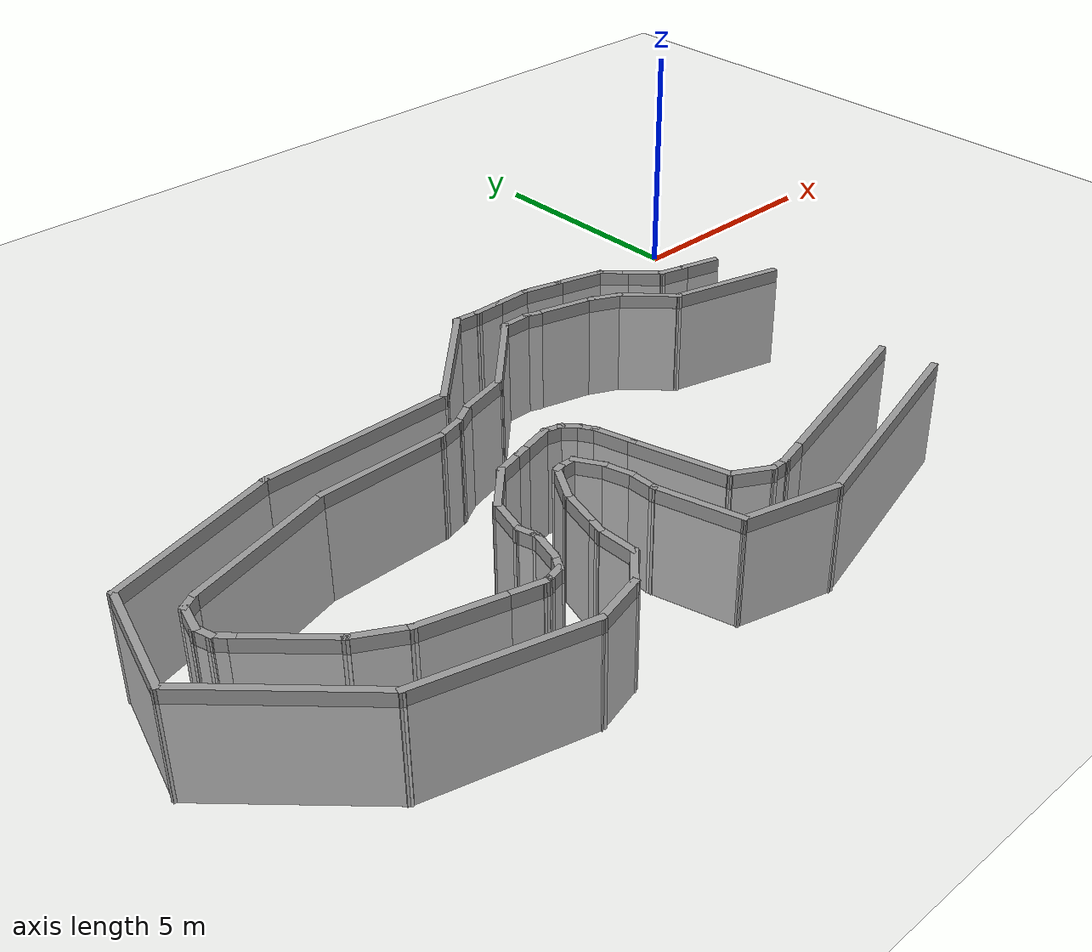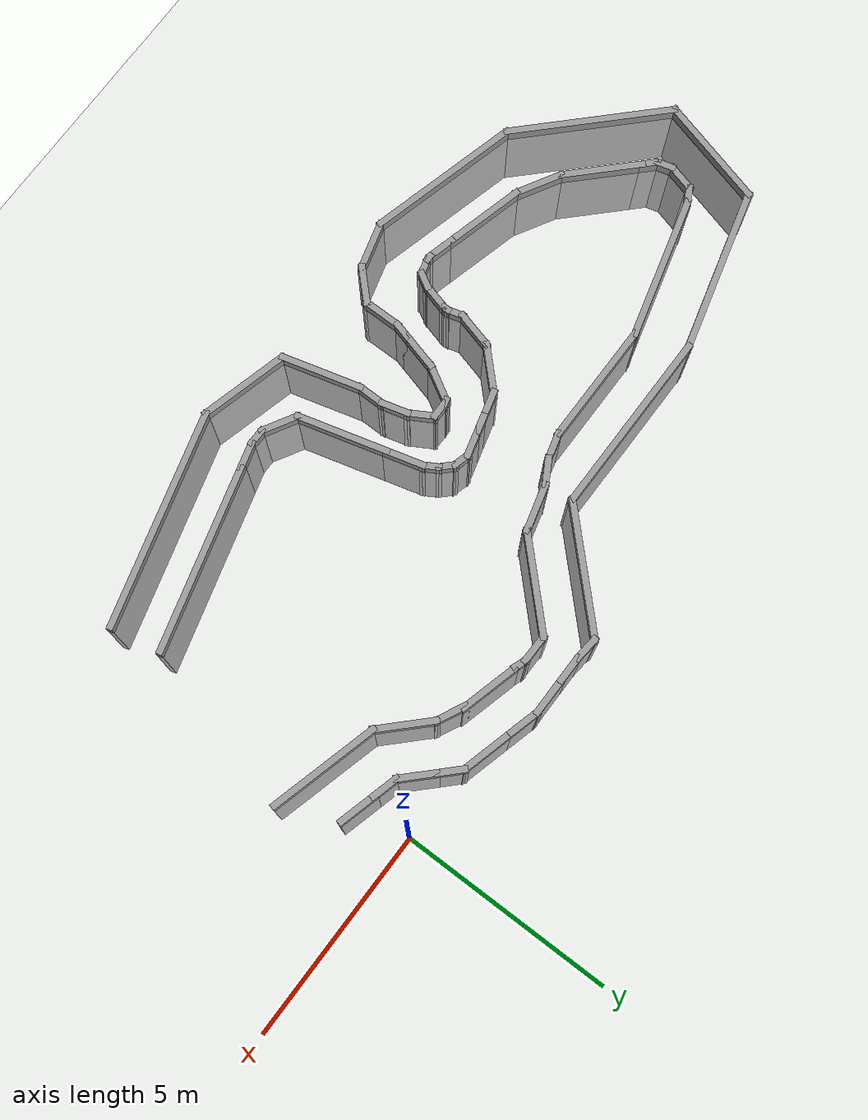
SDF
<sdf version="1.7">
 <world name="default">
  <model name="ground_plane">
   <static>1</static>
   <link name="link">
    <collision name="collision">
     <geometry><plane><normal>0 0 1</normal><size>100 100</size></plane></geometry>
     <surface>
      <contact><collide_bitmask>65535</collide_bitmask></contact>
      <friction><ode><mu>100</mu><mu2>50</mu2></ode></friction>
     </surface>
    </collision>
    <visual name="visual">
     <cast_shadows>0</cast_shadows>
     <geometry><plane><normal>0 0 1</normal><size>100 100</size></plane></geometry>
     <material>
      <script><uri>file://media/materials/scripts/gazebo.material</uri><name>Gazebo/Grey</name></script>
     </material>
    </visual>
   </link>
  </model>
  <model name="race_track">
   <pose>-1.60501 -2.80737 -2.21385 0 -0 0</pose>
   <link name="Wall_0">
    <collision name="Wall_0_Collision">
     <geometry><box><size>3.25 0.15 2.5</size></box></geometry>
     <pose>0 0 1.25 0 -0 0</pose>
    </collision>
    <visual name="Wall_0_Visual">
     <pose>0 0 1.25 0 -0 0</pose>
     <geometry><box><size>3.25 0.15 2.5</size></box></geometry>
     <material>
      <script><uri>file://media/materials/scripts/gazebo.material</uri><name>Gazebo/Grey</name></script>
      <ambient>1 1 1 1</ambient>
     </material>
     <meta><layer>0</layer></meta>
    </visual>
    <pose>-5.20016 2.3234 0 0 -0 -2.35619</pose>
   </link>
   <link name="Wall_1">
    <collision name="Wall_1_Collision">
     <geometry><box><size>4.5 0.15 2.5</size></box></geometry>
     <pose>0 0 1.25 0 -0 0</pose>
    </collision>
    <visual name="Wall_1_Visual">
     <pose>0 0 1.25 0 -0 0</pose>
     <geometry><box><size>4.5 0.15 2.5</size></box></geometry>
     <material>
      <script><uri>file://media/materials/scripts/gazebo.material</uri><name>Gazebo/Grey</name></script>
      <ambient>1 1 1 1</ambient>
     </material>
     <meta><layer>0</layer></meta>
    </visual>
    <pose>-8.47118 1.22738 0 0 -0 3.14159</pose>
   </link>
   <link name="Wall_10">
    <collision name="Wall_10_Collision">
     <geometry><box><size>1 0.15 2.5</size></box></geometry>
     <pose>0 0 1.25 0 -0 0</pose>
    </collision>
    <visual name="Wall_10_Visual">
     <pose>0 0 1.25 0 -0 0</pose>
     <geometry><box><size>1 0.15 2.5</size></box></geometry>
     <material>
      <script><uri>file://media/materials/scripts/gazebo.material</uri><name>Gazebo/Grey</name></script>
      <ambient>1 1 1 1</ambient>
     </material>
     <meta><layer>0</layer></meta>
    </visual>
    <pose>-6.97408 -3.45025 0 0 -0 1.309</pose>
   </link>
   <link name="Wall_100">
    <collision name="Wall_100_Collision">
     <geometry><box><size>0.75 0.15 2.5</size></box></geometry>
     <pose>0 0 1.25 0 -0 0</pose>
    </collision>
    <visual name="Wall_100_Visual">
     <pose>0 0 1.25 0 -0 0</pose>
     <geometry><box><size>0.75 0.15 2.5</size></box></geometry>
     <material>
      <script><uri>file://media/materials/scripts/gazebo.material</uri><name>Gazebo/Grey</name></script>
      <ambient>1 1 1 1</ambient>
     </material>
     <meta><layer>0</layer></meta>
    </visual>
    <pose>-2.81623 -5.01276 0 0 -0 0.261799</pose>
   </link>
   <link name="Wall_101">
    <collision name="Wall_101_Collision">
     <geometry><box><size>4.5 0.15 2.5</size></box></geometry>
     <pose>0 0 1.25 0 -0 0</pose>
    </collision>
    <visual name="Wall_101_Visual">
     <pose>0 0 1.25 0 -0 0</pose>
     <geometry><box><size>4.5 0.15 2.5</size></box></geometry>
     <material>
      <script><uri>file://media/materials/scripts/gazebo.material</uri><name>Gazebo/Grey</name></script>
      <ambient>1 1 1 1</ambient>
     </material>
     <meta><layer>0</layer></meta>
    </visual>
    <pose>-0.425561 -4.37218 0 0 -0 0.261799</pose>
   </link>
   <link name="Wall_11">
    <collision name="Wall_11_Collision">
     <geometry><box><size>1 0.15 2.5</size></box></geometry>
     <pose>0 0 1.25 0 -0 0</pose>
    </collision>
    <visual name="Wall_11_Visual">
     <pose>0 0 1.25 0 -0 0</pose>
     <geometry><box><size>1 0.15 2.5</size></box></geometry>
     <material>
      <script><uri>file://media/materials/scripts/gazebo.material</uri><name>Gazebo/Grey</name></script>
      <ambient>1 1 1 1</ambient>
     </material>
     <meta><layer>0</layer></meta>
    </visual>
    <pose>-6.65158 -2.67167 0 0 -0 1.0472</pose>
   </link>
   <link name="Wall_12">
    <collision name="Wall_12_Collision">
     <geometry><box><size>0.25 0.15 2.5</size></box></geometry>
     <pose>0 0 1.25 0 -0 0</pose>
    </collision>
    <visual name="Wall_12_Visual">
     <pose>0 0 1.25 0 -0 0</pose>
     <geometry><box><size>0.25 0.15 2.5</size></box></geometry>
     <material>
      <script><uri>file://media/materials/scripts/gazebo.material</uri><name>Gazebo/Grey</name></script>
      <ambient>1 1 1 1</ambient>
     </material>
     <meta><layer>0</layer></meta>
    </visual>
    <pose>-6.39079 -2.29067 0 0 -0 0.261799</pose>
   </link>
   <link name="Wall_13">
    <collision name="Wall_13_Collision">
     <geometry><box><size>0.5 0.15 2.5</size></box></geometry>
     <pose>0 0 1.25 0 -0 0</pose>
    </collision>
    <visual name="Wall_13_Visual">
     <pose>0 0 1.25 0 -0 0</pose>
     <geometry><box><size>0.5 0.15 2.5</size></box></geometry>
     <material>
      <script><uri>file://media/materials/scripts/gazebo.material</uri><name>Gazebo/Grey</name></script>
      <ambient>1 1 1 1</ambient>
     </material>
     <meta><layer>0</layer></meta>
    </visual>
    <pose>-6.16749 -2.27773 0 0 -0 0</pose>
   </link>
   <link name="Wall_136">
    <collision name="Wall_136_Collision">
     <geometry><box><size>2.75 0.15 2.5</size></box></geometry>
     <pose>0 0 1.25 0 -0 0</pose>
    </collision>
    <visual name="Wall_136_Visual">
     <pose>0 0 1.25 0 -0 0</pose>
     <geometry><box><size>2.75 0.15 2.5</size></box></geometry>
     <material>
      <script><uri>file://media/materials/scripts/gazebo.material</uri><name>Gazebo/Grey</name></script>
      <ambient>1 1 1 1</ambient>
     </material>
     <meta><layer>0</layer></meta>
    </visual>
    <pose>1.52414 0.478699 0 0 -0 2.87979</pose>
   </link>
   <link name="Wall_137">
    <collision name="Wall_137_Collision">
     <geometry><box><size>1.5 0.15 2.5</size></box></geometry>
     <pose>0 0 1.25 0 -0 0</pose>
    </collision>
    <visual name="Wall_137_Visual">
     <pose>0 0 1.25 0 -0 0</pose>
     <geometry><box><size>1.5 0.15 2.5</size></box></geometry>
     <material>
      <script><uri>file://media/materials/scripts/gazebo.material</uri><name>Gazebo/Grey</name></script>
      <ambient>1 1 1 1</ambient>
     </material>
     <meta><layer>0</layer></meta>
    </visual>
    <pose>-0.208862 1.29246 0 0 -0 2.35619</pose>
   </link>
   <link name="Wall_138">
    <collision name="Wall_138_Collision">
     <geometry><box><size>0.83217 0.15 2.5</size></box></geometry>
     <pose>0 0 1.25 0 -0 0</pose>
    </collision>
    <visual name="Wall_138_Visual">
     <pose>0 0 1.25 0 -0 0</pose>
     <geometry><box><size>0.83217 0.15 2.5</size></box></geometry>
     <material>
      <script><uri>file://media/materials/scripts/gazebo.material</uri><name>Gazebo/Grey</name></script>
      <ambient>1 1 1 1</ambient>
     </material>
     <meta><layer>0</layer></meta>
    </visual>
    <pose>-0.992491 1.91976 0 0 -0 2.68625</pose>
   </link>
   <link name="Wall_139">
    <collision name="Wall_139_Collision">
     <geometry><box><size>1.5 0.15 2.5</size></box></geometry>
     <pose>0 0 1.25 0 -0 0</pose>
    </collision>
    <visual name="Wall_139_Visual">
     <pose>0 0 1.25 0 -0 0</pose>
     <geometry><box><size>1.5 0.15 2.5</size></box></geometry>
     <material>
      <script><uri>file://media/materials/scripts/gazebo.material</uri><name>Gazebo/Grey</name></script>
      <ambient>1 1 1 1</ambient>
     </material>
     <meta><layer>0</layer></meta>
    </visual>
    <pose>-1.9043 2.24446 0 0 -0 2.87979</pose>
   </link>
   <link name="Wall_14">
    <collision name="Wall_14_Collision">
     <geometry><box><size>0.75 0.15 2.5</size></box></geometry>
     <pose>0 0 1.25 0 -0 0</pose>
    </collision>
    <visual name="Wall_14_Visual">
     <pose>0 0 1.25 0 -0 0</pose>
     <geometry><box><size>0.75 0.15 2.5</size></box></geometry>
     <material>
      <script><uri>file://media/materials/scripts/gazebo.material</uri><name>Gazebo/Grey</name></script>
      <ambient>1 1 1 1</ambient>
     </material>
     <meta><layer>0</layer></meta>
    </visual>
    <pose>-5.84249 -2.53754 0 0 -0 -1.0472</pose>
   </link>
   <link name="Wall_140">
    <collision name="Wall_140_Collision">
     <geometry><box><size>0.411235 0.15 2.5</size></box></geometry>
     <pose>0 0 1.25 0 -0 0</pose>
    </collision>
    <visual name="Wall_140_Visual">
     <pose>0 0 1.25 0 -0 0</pose>
     <geometry><box><size>0.411235 0.15 2.5</size></box></geometry>
     <material>
      <script><uri>file://media/materials/scripts/gazebo.material</uri><name>Gazebo/Grey</name></script>
      <ambient>1 1 1 1</ambient>
     </material>
     <meta><layer>0</layer></meta>
    </visual>
    <pose>-2.72533 2.46446 0 0 -0 2.78748</pose>
   </link>
   <link name="Wall_141">
    <collision name="Wall_141_Collision">
     <geometry><box><size>0.788881 0.15 2.5</size></box></geometry>
     <pose>0 0 1.25 0 -0 0</pose>
    </collision>
    <visual name="Wall_141_Visual">
     <pose>0 0 1.25 0 -0 0</pose>
     <geometry><box><size>0.788881 0.15 2.5</size></box></geometry>
     <material>
      <script><uri>file://media/materials/scripts/gazebo.material</uri><name>Gazebo/Grey</name></script>
      <ambient>1 1 1 1</ambient>
     </material>
     <meta><layer>0</layer></meta>
    </visual>
    <pose>-3.16728 2.51238 0 0 -0 3.13335</pose>
   </link>
   <link name="Wall_15">
    <collision name="Wall_15_Collision">
     <geometry><box><size>0.75 0.15 2.5</size></box></geometry>
     <pose>0 0 1.25 0 -0 0</pose>
    </collision>
    <visual name="Wall_15_Visual">
     <pose>0 0 1.25 0 -0 0</pose>
     <geometry><box><size>0.75 0.15 2.5</size></box></geometry>
     <material>
      <script><uri>file://media/materials/scripts/gazebo.material</uri><name>Gazebo/Grey</name></script>
      <ambient>1 1 1 1</ambient>
     </material>
     <meta><layer>0</layer></meta>
    </visual>
    <pose>-5.61484 -3.08712 0 0 -0 -1.309</pose>
   </link>
   <link name="Wall_16">
    <collision name="Wall_16_Collision">
     <geometry><box><size>0.75 0.15 2.5</size></box></geometry>
     <pose>0 0 1.25 0 -0 0</pose>
    </collision>
    <visual name="Wall_16_Visual">
     <pose>0 0 1.25 0 -0 0</pose>
     <geometry><box><size>0.75 0.15 2.5</size></box></geometry>
     <material>
      <script><uri>file://media/materials/scripts/gazebo.material</uri><name>Gazebo/Grey</name></script>
      <ambient>1 1 1 1</ambient>
     </material>
     <meta><layer>0</layer></meta>
    </visual>
    <pose>-5.5372 -3.6769 0 0 -0 -1.5708</pose>
   </link>
   <link name="Wall_17">
    <collision name="Wall_17_Collision">
     <geometry><box><size>2 0.15 2.5</size></box></geometry>
     <pose>0 0 1.25 0 -0 0</pose>
    </collision>
    <visual name="Wall_17_Visual">
     <pose>0 0 1.25 0 -0 0</pose>
     <geometry><box><size>2 0.15 2.5</size></box></geometry>
     <material>
      <script><uri>file://media/materials/scripts/gazebo.material</uri><name>Gazebo/Grey</name></script>
      <ambient>1 1 1 1</ambient>
     </material>
     <meta><layer>0</layer></meta>
    </visual>
    <pose>-5.29779 -4.87038 0 0 -0 -1.309</pose>
   </link>
   <link name="Wall_18">
    <collision name="Wall_18_Collision">
     <geometry><box><size>2.25 0.15 2.5</size></box></geometry>
     <pose>0 0 1.25 0 -0 0</pose>
    </collision>
    <visual name="Wall_18_Visual">
     <pose>0 0 1.25 0 -0 0</pose>
     <geometry><box><size>2.25 0.15 2.5</size></box></geometry>
     <material>
      <script><uri>file://media/materials/scripts/gazebo.material</uri><name>Gazebo/Grey</name></script>
      <ambient>1 1 1 1</ambient>
     </material>
     <meta><layer>0</layer></meta>
    </visual>
    <pose>-4.04416 -6.03562 0 0 -0 -0.261799</pose>
   </link>
   <link name="Wall_19">
    <collision name="Wall_19_Collision">
     <geometry><box><size>5.25 0.15 2.5</size></box></geometry>
     <pose>0 0 1.25 0 -0 0</pose>
    </collision>
    <visual name="Wall_19_Visual">
     <pose>0 0 1.25 0 -0 0</pose>
     <geometry><box><size>5.25 0.15 2.5</size></box></geometry>
     <material>
      <script><uri>file://media/materials/scripts/gazebo.material</uri><name>Gazebo/Grey</name></script>
      <ambient>1 1 1 1</ambient>
     </material>
     <meta><layer>0</layer></meta>
    </visual>
    <pose>-0.566829 -5.64739 0 0 -0 0.261799</pose>
   </link>
   <link name="Wall_2">
    <collision name="Wall_2_Collision">
     <geometry><box><size>4 0.15 2.5</size></box></geometry>
     <pose>0 0 1.25 0 -0 0</pose>
    </collision>
    <visual name="Wall_2_Visual">
     <pose>0 0 1.25 0 -0 0</pose>
     <geometry><box><size>4 0.15 2.5</size></box></geometry>
     <material>
      <script><uri>file://media/materials/scripts/gazebo.material</uri><name>Gazebo/Grey</name></script>
      <ambient>1 1 1 1</ambient>
     </material>
     <meta><layer>0</layer></meta>
    </visual>
    <pose>-12.5056 0.729158 0 0 -0 -2.87979</pose>
   </link>
   <link name="Wall_3">
    <collision name="Wall_3_Collision">
     <geometry><box><size>2.75 0.15 2.5</size></box></geometry>
     <pose>0 0 1.25 0 -0 0</pose>
    </collision>
    <visual name="Wall_3_Visual">
     <pose>0 0 1.25 0 -0 0</pose>
     <geometry><box><size>2.75 0.15 2.5</size></box></geometry>
     <material>
      <script><uri>file://media/materials/scripts/gazebo.material</uri><name>Gazebo/Grey</name></script>
      <ambient>1 1 1 1</ambient>
     </material>
     <meta><layer>0</layer></meta>
    </visual>
    <pose>-14.7015 -1.02477 0 0 -0 -1.8326</pose>
   </link>
   <link name="Wall_4">
    <collision name="Wall_4_Collision">
     <geometry><box><size>4 0.15 2.5</size></box></geometry>
     <pose>0 0 1.25 0 -0 0</pose>
    </collision>
    <visual name="Wall_4_Visual">
     <pose>0 0 1.25 0 -0 0</pose>
     <geometry><box><size>4 0.15 2.5</size></box></geometry>
     <material>
      <script><uri>file://media/materials/scripts/gazebo.material</uri><name>Gazebo/Grey</name></script>
      <ambient>1 1 1 1</ambient>
     </material>
     <meta><layer>0</layer></meta>
    </visual>
    <pose>-13.6767 -3.64166 0 0 -0 -0.785398</pose>
   </link>
   <link name="Wall_5">
    <collision name="Wall_5_Collision">
     <geometry><box><size>3.75 0.15 2.5</size></box></geometry>
     <pose>0 0 1.25 0 -0 0</pose>
    </collision>
    <visual name="Wall_5_Visual">
     <pose>0 0 1.25 0 -0 0</pose>
     <geometry><box><size>3.75 0.15 2.5</size></box></geometry>
     <material>
      <script><uri>file://media/materials/scripts/gazebo.material</uri><name>Gazebo/Grey</name></script>
      <ambient>1 1 1 1</ambient>
     </material>
     <meta><layer>0</layer></meta>
    </visual>
    <pose>-10.5769 -5.46871 0 0 -0 -0.261799</pose>
   </link>
   <link name="Wall_57">
    <collision name="Wall_57_Collision">
     <geometry><box><size>1 0.15 2.5</size></box></geometry>
     <pose>0 0 1.25 0 -0 0</pose>
    </collision>
    <visual name="Wall_57_Visual">
     <pose>0 0 1.25 0 -0 0</pose>
     <geometry><box><size>1 0.15 2.5</size></box></geometry>
     <material>
      <script><uri>file://media/materials/scripts/gazebo.material</uri><name>Gazebo/Grey</name></script>
      <ambient>1 1 1 1</ambient>
     </material>
     <meta><layer>0</layer></meta>
    </visual>
    <pose>1.78695 1.57051 0 0 -0 2.87979</pose>
   </link>
   <link name="Wall_58">
    <collision name="Wall_58_Collision">
     <geometry><box><size>0.75 0.15 2.5</size></box></geometry>
     <pose>0 0 1.25 0 -0 0</pose>
    </collision>
    <visual name="Wall_58_Visual">
     <pose>0 0 1.25 0 -0 0</pose>
     <geometry><box><size>0.75 0.15 2.5</size></box></geometry>
     <material>
      <script><uri>file://media/materials/scripts/gazebo.material</uri><name>Gazebo/Grey</name></script>
      <ambient>1 1 1 1</ambient>
     </material>
     <meta><layer>0</layer></meta>
    </visual>
    <pose>1.08665 1.75815 0 0 -0 2.87979</pose>
   </link>
   <link name="Wall_59">
    <collision name="Wall_59_Collision">
     <geometry><box><size>1 0.15 2.5</size></box></geometry>
     <pose>0 0 1.25 0 -0 0</pose>
    </collision>
    <visual name="Wall_59_Visual">
     <pose>0 0 1.25 0 -0 0</pose>
     <geometry><box><size>1 0.15 2.5</size></box></geometry>
     <material>
      <script><uri>file://media/materials/scripts/gazebo.material</uri><name>Gazebo/Grey</name></script>
      <ambient>1 1 1 1</ambient>
     </material>
     <meta><layer>0</layer></meta>
    </visual>
    <pose>0.496356 2.13632 0 0 -0 2.35619</pose>
   </link>
   <link name="Wall_6">
    <collision name="Wall_6_Collision">
     <geometry><box><size>1.25 0.15 2.5</size></box></geometry>
     <pose>0 0 1.25 0 -0 0</pose>
    </collision>
    <visual name="Wall_6_Visual">
     <pose>0 0 1.25 0 -0 0</pose>
     <geometry><box><size>1.25 0.15 2.5</size></box></geometry>
     <material>
      <script><uri>file://media/materials/scripts/gazebo.material</uri><name>Gazebo/Grey</name></script>
      <ambient>1 1 1 1</ambient>
     </material>
     <meta><layer>0</layer></meta>
    </visual>
    <pose>-8.30697 -5.79223 0 0 -0 0.261799</pose>
   </link>
   <link name="Wall_60">
    <collision name="Wall_60_Collision">
     <geometry><box><size>0.75 0.15 2.5</size></box></geometry>
     <pose>0 0 1.25 0 -0 0</pose>
    </collision>
    <visual name="Wall_60_Visual">
     <pose>0 0 1.25 0 -0 0</pose>
     <geometry><box><size>0.75 0.15 2.5</size></box></geometry>
     <material>
      <script><uri>file://media/materials/scripts/gazebo.material</uri><name>Gazebo/Grey</name></script>
      <ambient>1 1 1 1</ambient>
     </material>
     <meta><layer>0</layer></meta>
    </visual>
    <pose>-0.016296 2.64897 0 0 -0 2.35619</pose>
   </link>
   <link name="Wall_61">
    <collision name="Wall_61_Collision">
     <geometry><box><size>1.25 0.15 2.5</size></box></geometry>
     <pose>0 0 1.25 0 -0 0</pose>
    </collision>
    <visual name="Wall_61_Visual">
     <pose>0 0 1.25 0 -0 0</pose>
     <geometry><box><size>1.25 0.15 2.5</size></box></geometry>
     <material>
      <script><uri>file://media/materials/scripts/gazebo.material</uri><name>Gazebo/Grey</name></script>
      <ambient>1 1 1 1</ambient>
     </material>
     <meta><layer>0</layer></meta>
    </visual>
    <pose>-0.759687 3.00346 0 0 -0 2.87979</pose>
   </link>
   <link name="Wall_62">
    <collision name="Wall_62_Collision">
     <geometry><box><size>1 0.15 2.5</size></box></geometry>
     <pose>0 0 1.25 0 -0 0</pose>
    </collision>
    <visual name="Wall_62_Visual">
     <pose>0 0 1.25 0 -0 0</pose>
     <geometry><box><size>1 0.15 2.5</size></box></geometry>
     <material>
      <script><uri>file://media/materials/scripts/gazebo.material</uri><name>Gazebo/Grey</name></script>
      <ambient>1 1 1 1</ambient>
     </material>
     <meta><layer>0</layer></meta>
    </visual>
    <pose>-1.70147 3.25581 0 0 -0 2.87979</pose>
   </link>
   <link name="Wall_63">
    <collision name="Wall_63_Collision">
     <geometry><box><size>1 0.15 2.5</size></box></geometry>
     <pose>0 0 1.25 0 -0 0</pose>
    </collision>
    <visual name="Wall_63_Visual">
     <pose>0 0 1.25 0 -0 0</pose>
     <geometry><box><size>1 0.15 2.5</size></box></geometry>
     <material>
      <script><uri>file://media/materials/scripts/gazebo.material</uri><name>Gazebo/Grey</name></script>
      <ambient>1 1 1 1</ambient>
     </material>
     <meta><layer>0</layer></meta>
    </visual>
    <pose>-2.53698 3.3658 0 0 -0 3.14159</pose>
   </link>
   <link name="Wall_64">
    <collision name="Wall_64_Collision">
     <geometry><box><size>0.75 0.15 2.5</size></box></geometry>
     <pose>0 0 1.25 0 -0 0</pose>
    </collision>
    <visual name="Wall_64_Visual">
     <pose>0 0 1.25 0 -0 0</pose>
     <geometry><box><size>0.75 0.15 2.5</size></box></geometry>
     <material>
      <script><uri>file://media/materials/scripts/gazebo.material</uri><name>Gazebo/Grey</name></script>
      <ambient>1 1 1 1</ambient>
     </material>
     <meta><layer>0</layer></meta>
    </visual>
    <pose>-3.26198 3.3658 0 0 -0 3.14159</pose>
   </link>
   <link name="Wall_65">
    <collision name="Wall_65_Collision">
     <geometry><box><size>0.694806 0.15 2.5</size></box></geometry>
     <pose>0 0 1.25 0 -0 0</pose>
    </collision>
    <visual name="Wall_65_Visual">
     <pose>0 0 1.25 0 -0 0</pose>
     <geometry><box><size>0.694806 0.15 2.5</size></box></geometry>
     <material>
      <script><uri>file://media/materials/scripts/gazebo.material</uri><name>Gazebo/Grey</name></script>
      <ambient>1 1 1 1</ambient>
     </material>
     <meta><layer>0</layer></meta>
    </visual>
    <pose>-3.83306 3.39261 0 0 -0 3.04303</pose>
   </link>
   <link name="Wall_66">
    <collision name="Wall_66_Collision">
     <geometry><box><size>0.16 0.15 2.5</size></box></geometry>
     <pose>0 0 1.25 0 -0 0</pose>
    </collision>
    <visual name="Wall_66_Visual">
     <pose>0 0 1.25 0 -0 0</pose>
     <geometry><box><size>0.16 0.15 2.5</size></box></geometry>
     <material>
      <script><uri>file://media/materials/scripts/gazebo.material</uri><name>Gazebo/Grey</name></script>
      <ambient>1 1 1 1</ambient>
     </material>
     <meta><layer>0</layer></meta>
    </visual>
    <pose>-4.09915 3.41941 0 0 -0 0</pose>
   </link>
   <link name="Wall_68">
    <collision name="Wall_68_Collision">
     <geometry><box><size>2.5 0.15 2.5</size></box></geometry>
     <pose>0 0 1.25 0 -0 0</pose>
    </collision>
    <visual name="Wall_68_Visual">
     <pose>0 0 1.25 0 -0 0</pose>
     <geometry><box><size>2.5 0.15 2.5</size></box></geometry>
     <material>
      <script><uri>file://media/materials/scripts/gazebo.material</uri><name>Gazebo/Grey</name></script>
      <ambient>1 1 1 1</ambient>
     </material>
     <meta><layer>0</layer></meta>
    </visual>
    <pose>-4.31756 1.68417 0 0 -0 -2.35619</pose>
   </link>
   <link name="Wall_69">
    <collision name="Wall_69_Collision">
     <geometry><box><size>1.25 0.15 2.5</size></box></geometry>
     <pose>0 0 1.25 0 -0 0</pose>
    </collision>
    <visual name="Wall_69_Visual">
     <pose>0 0 1.25 0 -0 0</pose>
     <geometry><box><size>1.25 0.15 2.5</size></box></geometry>
     <material>
      <script><uri>file://media/materials/scripts/gazebo.material</uri><name>Gazebo/Grey</name></script>
      <ambient>1 1 1 1</ambient>
     </material>
     <meta><layer>0</layer></meta>
    </visual>
    <pose>-5.67967 0.710966 0 0 -0 -2.87979</pose>
   </link>
   <link name="Wall_7">
    <collision name="Wall_7_Collision">
     <geometry><box><size>1 0.15 2.5</size></box></geometry>
     <pose>0 0 1.25 0 -0 0</pose>
    </collision>
    <visual name="Wall_7_Visual">
     <pose>0 0 1.25 0 -0 0</pose>
     <geometry><box><size>1 0.15 2.5</size></box></geometry>
     <material>
      <script><uri>file://media/materials/scripts/gazebo.material</uri><name>Gazebo/Grey</name></script>
      <ambient>1 1 1 1</ambient>
     </material>
     <meta><layer>0</layer></meta>
    </visual>
    <pose>-7.47519 -5.34936 0 0 -0 0.785398</pose>
   </link>
   <link name="Wall_70">
    <collision name="Wall_70_Collision">
     <geometry><box><size>0.75 0.15 2.5</size></box></geometry>
     <pose>0 0 1.25 0 -0 0</pose>
    </collision>
    <visual name="Wall_70_Visual">
     <pose>0 0 1.25 0 -0 0</pose>
     <geometry><box><size>0.75 0.15 2.5</size></box></geometry>
     <material>
      <script><uri>file://media/materials/scripts/gazebo.material</uri><name>Gazebo/Grey</name></script>
      <ambient>1 1 1 1</ambient>
     </material>
     <meta><layer>0</layer></meta>
    </visual>
    <pose>-6.47074 0.418616 0 0 -0 -2.61799</pose>
   </link>
   <link name="Wall_71">
    <collision name="Wall_71_Collision">
     <geometry><box><size>0.75 0.15 2.5</size></box></geometry>
     <pose>0 0 1.25 0 -0 0</pose>
    </collision>
    <visual name="Wall_71_Visual">
     <pose>0 0 1.25 0 -0 0</pose>
     <geometry><box><size>0.75 0.15 2.5</size></box></geometry>
     <material>
      <script><uri>file://media/materials/scripts/gazebo.material</uri><name>Gazebo/Grey</name></script>
      <ambient>1 1 1 1</ambient>
     </material>
     <meta><layer>0</layer></meta>
    </visual>
    <pose>-7.02032 0.19097 0 0 -0 -2.87979</pose>
   </link>
   <link name="Wall_72">
    <collision name="Wall_72_Collision">
     <geometry><box><size>3 0.15 2.5</size></box></geometry>
     <pose>0 0 1.25 0 -0 0</pose>
    </collision>
    <visual name="Wall_72_Visual">
     <pose>0 0 1.25 0 -0 0</pose>
     <geometry><box><size>3 0.15 2.5</size></box></geometry>
     <material>
      <script><uri>file://media/materials/scripts/gazebo.material</uri><name>Gazebo/Grey</name></script>
      <ambient>1 1 1 1</ambient>
     </material>
     <meta><layer>0</layer></meta>
    </visual>
    <pose>-8.7351 0.113324 0 0 -0 3.14159</pose>
   </link>
   <link name="Wall_73">
    <collision name="Wall_73_Collision">
     <geometry><box><size>3.5 0.15 2.5</size></box></geometry>
     <pose>0 0 1.25 0 -0 0</pose>
    </collision>
    <visual name="Wall_73_Visual">
     <pose>0 0 1.25 0 -0 0</pose>
     <geometry><box><size>3.5 0.15 2.5</size></box></geometry>
     <material>
      <script><uri>file://media/materials/scripts/gazebo.material</uri><name>Gazebo/Grey</name></script>
      <ambient>1 1 1 1</ambient>
     </material>
     <meta><layer>0</layer></meta>
    </visual>
    <pose>-11.778 -0.320197 0 0 -0 -2.87979</pose>
   </link>
   <link name="Wall_74">
    <collision name="Wall_74_Collision">
     <geometry><box><size>0.5 0.15 2.5</size></box></geometry>
     <pose>0 0 1.25 0 -0 0</pose>
    </collision>
    <visual name="Wall_74_Visual">
     <pose>0 0 1.25 0 -0 0</pose>
     <geometry><box><size>0.5 0.15 2.5</size></box></geometry>
     <material>
      <script><uri>file://media/materials/scripts/gazebo.material</uri><name>Gazebo/Grey</name></script>
      <ambient>1 1 1 1</ambient>
     </material>
     <meta><layer>0</layer></meta>
    </visual>
    <pose>-13.5475 -0.84122 0 0 -0 -2.61799</pose>
   </link>
   <link name="Wall_75">
    <collision name="Wall_75_Collision">
     <geometry><box><size>0.75 0.15 2.5</size></box></geometry>
     <pose>0 0 1.25 0 -0 0</pose>
    </collision>
    <visual name="Wall_75_Visual">
     <pose>0 0 1.25 0 -0 0</pose>
     <geometry><box><size>0.75 0.15 2.5</size></box></geometry>
     <material>
      <script><uri>file://media/materials/scripts/gazebo.material</uri><name>Gazebo/Grey</name></script>
      <ambient>1 1 1 1</ambient>
     </material>
     <meta><layer>0</layer></meta>
    </visual>
    <pose>-13.7767 -1.2185 0 0 -0 -1.8326</pose>
   </link>
   <link name="Wall_76">
    <collision name="Wall_76_Collision">
     <geometry><box><size>0.5 0.15 2.5</size></box></geometry>
     <pose>0 0 1.25 0 -0 0</pose>
    </collision>
    <visual name="Wall_76_Visual">
     <pose>0 0 1.25 0 -0 0</pose>
     <geometry><box><size>0.5 0.15 2.5</size></box></geometry>
     <material>
      <script><uri>file://media/materials/scripts/gazebo.material</uri><name>Gazebo/Grey</name></script>
      <ambient>1 1 1 1</ambient>
     </material>
     <meta><layer>0</layer></meta>
    </visual>
    <pose>-13.8091 -1.67731 0 0 -0 -1.309</pose>
   </link>
   <link name="Wall_77">
    <collision name="Wall_77_Collision">
     <geometry><box><size>0.5 0.15 2.5</size></box></geometry>
     <pose>0 0 1.25 0 -0 0</pose>
    </collision>
    <visual name="Wall_77_Visual">
     <pose>0 0 1.25 0 -0 0</pose>
     <geometry><box><size>0.5 0.15 2.5</size></box></geometry>
     <material>
      <script><uri>file://media/materials/scripts/gazebo.material</uri><name>Gazebo/Grey</name></script>
      <ambient>1 1 1 1</ambient>
     </material>
     <meta><layer>0</layer></meta>
    </visual>
    <pose>-13.64 -1.97009 0 0 -0 -0.785398</pose>
   </link>
   <link name="Wall_78">
    <collision name="Wall_78_Collision">
     <geometry><box><size>2 0.15 2.5</size></box></geometry>
     <pose>0 0 1.25 0 -0 0</pose>
    </collision>
    <visual name="Wall_78_Visual">
     <pose>0 0 1.25 0 -0 0</pose>
     <geometry><box><size>2 0.15 2.5</size></box></geometry>
     <material>
      <script><uri>file://media/materials/scripts/gazebo.material</uri><name>Gazebo/Grey</name></script>
      <ambient>1 1 1 1</ambient>
     </material>
     <meta><layer>0</layer></meta>
    </visual>
    <pose>-12.8622 -2.74791 0 0 -0 -0.785398</pose>
   </link>
   <link name="Wall_79">
    <collision name="Wall_79_Collision">
     <geometry><box><size>1.25 0.15 2.5</size></box></geometry>
     <pose>0 0 1.25 0 -0 0</pose>
    </collision>
    <visual name="Wall_79_Visual">
     <pose>0 0 1.25 0 -0 0</pose>
     <geometry><box><size>1.25 0.15 2.5</size></box></geometry>
     <material>
      <script><uri>file://media/materials/scripts/gazebo.material</uri><name>Gazebo/Grey</name></script>
      <ambient>1 1 1 1</ambient>
     </material>
     <meta><layer>0</layer></meta>
    </visual>
    <pose>-11.7318 -3.67698 0 0 -0 -0.523599</pose>
   </link>
   <link name="Wall_8">
    <collision name="Wall_8_Collision">
     <geometry><box><size>1 0.15 2.5</size></box></geometry>
     <pose>0 0 1.25 0 -0 0</pose>
    </collision>
    <visual name="Wall_8_Visual">
     <pose>0 0 1.25 0 -0 0</pose>
     <geometry><box><size>1 0.15 2.5</size></box></geometry>
     <material>
      <script><uri>file://media/materials/scripts/gazebo.material</uri><name>Gazebo/Grey</name></script>
      <ambient>1 1 1 1</ambient>
     </material>
     <meta><layer>0</layer></meta>
    </visual>
    <pose>-7.17467 -4.62384 0 0 -0 1.5708</pose>
   </link>
   <link name="Wall_80">
    <collision name="Wall_80_Collision">
     <geometry><box><size>2 0.15 2.5</size></box></geometry>
     <pose>0 0 1.25 0 -0 0</pose>
    </collision>
    <visual name="Wall_80_Visual">
     <pose>0 0 1.25 0 -0 0</pose>
     <geometry><box><size>2 0.15 2.5</size></box></geometry>
     <material>
      <script><uri>file://media/materials/scripts/gazebo.material</uri><name>Gazebo/Grey</name></script>
      <ambient>1 1 1 1</ambient>
     </material>
     <meta><layer>0</layer></meta>
    </visual>
    <pose>-10.362 -4.19139 0 0 -0 -0.261799</pose>
   </link>
   <link name="Wall_81">
    <collision name="Wall_81_Collision">
     <geometry><box><size>0.75 0.15 2.5</size></box></geometry>
     <pose>0 0 1.25 0 -0 0</pose>
    </collision>
    <visual name="Wall_81_Visual">
     <pose>0 0 1.25 0 -0 0</pose>
     <geometry><box><size>0.75 0.15 2.5</size></box></geometry>
     <material>
      <script><uri>file://media/materials/scripts/gazebo.material</uri><name>Gazebo/Grey</name></script>
      <ambient>1 1 1 1</ambient>
     </material>
     <meta><layer>0</layer></meta>
    </visual>
    <pose>-9.17876 -4.50845 0 0 -0 -0.261799</pose>
   </link>
   <link name="Wall_82">
    <collision name="Wall_82_Collision">
     <geometry><box><size>0.25 0.15 2.5</size></box></geometry>
     <pose>0 0 1.25 0 -0 0</pose>
    </collision>
    <visual name="Wall_82_Visual">
     <pose>0 0 1.25 0 -0 0</pose>
     <geometry><box><size>0.25 0.15 2.5</size></box></geometry>
     <material>
      <script><uri>file://media/materials/scripts/gazebo.material</uri><name>Gazebo/Grey</name></script>
      <ambient>1 1 1 1</ambient>
     </material>
     <meta><layer>0</layer></meta>
    </visual>
    <pose>-8.83898 -4.58609 0 0 -0 0</pose>
   </link>
   <link name="Wall_83">
    <collision name="Wall_83_Collision">
     <geometry><box><size>0.5 0.15 2.5</size></box></geometry>
     <pose>0 0 1.25 0 -0 0</pose>
    </collision>
    <visual name="Wall_83_Visual">
     <pose>0 0 1.25 0 -0 0</pose>
     <geometry><box><size>0.5 0.15 2.5</size></box></geometry>
     <material>
      <script><uri>file://media/materials/scripts/gazebo.material</uri><name>Gazebo/Grey</name></script>
      <ambient>1 1 1 1</ambient>
     </material>
     <meta><layer>0</layer></meta>
    </visual>
    <pose>-8.61994 -4.5408 0 0 -0 0.261799</pose>
   </link>
   <link name="Wall_84">
    <collision name="Wall_84_Collision">
     <geometry><box><size>0.5 0.15 2.5</size></box></geometry>
     <pose>0 0 1.25 0 -0 0</pose>
    </collision>
    <visual name="Wall_84_Visual">
     <pose>0 0 1.25 0 -0 0</pose>
     <geometry><box><size>0.5 0.15 2.5</size></box></geometry>
     <material>
      <script><uri>file://media/materials/scripts/gazebo.material</uri><name>Gazebo/Grey</name></script>
      <ambient>1 1 1 1</ambient>
     </material>
     <meta><layer>0</layer></meta>
    </visual>
    <pose>-8.36341 -4.34395 0 0 -0 1.0472</pose>
   </link>
   <link name="Wall_85">
    <collision name="Wall_85_Collision">
     <geometry><box><size>0.75 0.15 2.5</size></box></geometry>
     <pose>0 0 1.25 0 -0 0</pose>
    </collision>
    <visual name="Wall_85_Visual">
     <pose>0 0 1.25 0 -0 0</pose>
     <geometry><box><size>0.75 0.15 2.5</size></box></geometry>
     <material>
      <script><uri>file://media/materials/scripts/gazebo.material</uri><name>Gazebo/Grey</name></script>
      <ambient>1 1 1 1</ambient>
     </material>
     <meta><layer>0</layer></meta>
    </visual>
    <pose>-8.19826 -3.90262 0 0 -0 1.309</pose>
   </link>
   <link name="Wall_86">
    <collision name="Wall_86_Collision">
     <geometry><box><size>0.25 0.15 2.5</size></box></geometry>
     <pose>0 0 1.25 0 -0 0</pose>
    </collision>
    <visual name="Wall_86_Visual">
     <pose>0 0 1.25 0 -0 0</pose>
     <geometry><box><size>0.25 0.15 2.5</size></box></geometry>
     <material>
      <script><uri>file://media/materials/scripts/gazebo.material</uri><name>Gazebo/Grey</name></script>
      <ambient>1 1 1 1</ambient>
     </material>
     <meta><layer>0</layer></meta>
    </visual>
    <pose>-8.12062 -3.56284 0 0 -0 1.5708</pose>
   </link>
   <link name="Wall_87">
    <collision name="Wall_87_Collision">
     <geometry><box><size>0.5 0.15 2.5</size></box></geometry>
     <pose>0 0 1.25 0 -0 0</pose>
    </collision>
    <visual name="Wall_87_Visual">
     <pose>0 0 1.25 0 -0 0</pose>
     <geometry><box><size>0.5 0.15 2.5</size></box></geometry>
     <material>
      <script><uri>file://media/materials/scripts/gazebo.material</uri><name>Gazebo/Grey</name></script>
      <ambient>1 1 1 1</ambient>
     </material>
     <meta><layer>0</layer></meta>
    </visual>
    <pose>-8.16591 -3.3438 0 0 -0 1.8326</pose>
   </link>
   <link name="Wall_88">
    <collision name="Wall_88_Collision">
     <geometry><box><size>1 0.15 2.5</size></box></geometry>
     <pose>0 0 1.25 0 -0 0</pose>
    </collision>
    <visual name="Wall_88_Visual">
     <pose>0 0 1.25 0 -0 0</pose>
     <geometry><box><size>1 0.15 2.5</size></box></geometry>
     <material>
      <script><uri>file://media/materials/scripts/gazebo.material</uri><name>Gazebo/Grey</name></script>
      <ambient>1 1 1 1</ambient>
     </material>
     <meta><layer>0</layer></meta>
    </visual>
    <pose>-8.10121 -2.76425 0 0 -0 1.309</pose>
   </link>
   <link name="Wall_89">
    <collision name="Wall_89_Collision">
     <geometry><box><size>1.25 0.15 2.5</size></box></geometry>
     <pose>0 0 1.25 0 -0 0</pose>
    </collision>
    <visual name="Wall_89_Visual">
     <pose>0 0 1.25 0 -0 0</pose>
     <geometry><box><size>1.25 0.15 2.5</size></box></geometry>
     <material>
      <script><uri>file://media/materials/scripts/gazebo.material</uri><name>Gazebo/Grey</name></script>
      <ambient>1 1 1 1</ambient>
     </material>
     <meta><layer>0</layer></meta>
    </visual>
    <pose>-7.6023 -1.96482 0 0 -0 0.785398</pose>
   </link>
   <link name="Wall_9">
    <collision name="Wall_9_Collision">
     <geometry><box><size>0.5 0.15 2.5</size></box></geometry>
     <pose>0 0 1.25 0 -0 0</pose>
    </collision>
    <visual name="Wall_9_Visual">
     <pose>0 0 1.25 0 -0 0</pose>
     <geometry><box><size>0.5 0.15 2.5</size></box></geometry>
     <material>
      <script><uri>file://media/materials/scripts/gazebo.material</uri><name>Gazebo/Grey</name></script>
      <ambient>1 1 1 1</ambient>
     </material>
     <meta><layer>0</layer></meta>
    </visual>
    <pose>-7.12937 -4.02981 0 0 -0 1.309</pose>
   </link>
   <link name="Wall_90">
    <collision name="Wall_90_Collision">
     <geometry><box><size>0.75 0.15 2.5</size></box></geometry>
     <pose>0 0 1.25 0 -0 0</pose>
    </collision>
    <visual name="Wall_90_Visual">
     <pose>0 0 1.25 0 -0 0</pose>
     <geometry><box><size>0.75 0.15 2.5</size></box></geometry>
     <material>
      <script><uri>file://media/materials/scripts/gazebo.material</uri><name>Gazebo/Grey</name></script>
      <ambient>1 1 1 1</ambient>
     </material>
     <meta><layer>0</layer></meta>
    </visual>
    <pose>-6.92361 -1.49826 0 0 -0 0.261799</pose>
   </link>
   <link name="Wall_91">
    <collision name="Wall_91_Collision">
     <geometry><box><size>0.5 0.15 2.5</size></box></geometry>
     <pose>0 0 1.25 0 -0 0</pose>
    </collision>
    <visual name="Wall_91_Visual">
     <pose>0 0 1.25 0 -0 0</pose>
     <geometry><box><size>0.5 0.15 2.5</size></box></geometry>
     <material>
      <script><uri>file://media/materials/scripts/gazebo.material</uri><name>Gazebo/Grey</name></script>
      <ambient>1 1 1 1</ambient>
     </material>
     <meta><layer>0</layer></meta>
    </visual>
    <pose>-6.4648 -1.37533 0 0 -0 0.261799</pose>
   </link>
   <link name="Wall_92">
    <collision name="Wall_92_Collision">
     <geometry><box><size>0.75 0.15 2.5</size></box></geometry>
     <pose>0 0 1.25 0 -0 0</pose>
    </collision>
    <visual name="Wall_92_Visual">
     <pose>0 0 1.25 0 -0 0</pose>
     <geometry><box><size>0.75 0.15 2.5</size></box></geometry>
     <material>
      <script><uri>file://media/materials/scripts/gazebo.material</uri><name>Gazebo/Grey</name></script>
      <ambient>1 1 1 1</ambient>
     </material>
     <meta><layer>0</layer></meta>
    </visual>
    <pose>-6.00598 -1.25239 0 0 -0 0.261799</pose>
   </link>
   <link name="Wall_93">
    <collision name="Wall_93_Collision">
     <geometry><box><size>0.5 0.15 2.5</size></box></geometry>
     <pose>0 0 1.25 0 -0 0</pose>
    </collision>
    <visual name="Wall_93_Visual">
     <pose>0 0 1.25 0 -0 0</pose>
     <geometry><box><size>0.5 0.15 2.5</size></box></geometry>
     <material>
      <script><uri>file://media/materials/scripts/gazebo.material</uri><name>Gazebo/Grey</name></script>
      <ambient>1 1 1 1</ambient>
     </material>
     <meta><layer>0</layer></meta>
    </visual>
    <pose>-5.54717 -1.22003 0 0 -0 -0.261799</pose>
   </link>
   <link name="Wall_94">
    <collision name="Wall_94_Collision">
     <geometry><box><size>0.5 0.15 2.5</size></box></geometry>
     <pose>0 0 1.25 0 -0 0</pose>
    </collision>
    <visual name="Wall_94_Visual">
     <pose>0 0 1.25 0 -0 0</pose>
     <geometry><box><size>0.5 0.15 2.5</size></box></geometry>
     <material>
      <script><uri>file://media/materials/scripts/gazebo.material</uri><name>Gazebo/Grey</name></script>
      <ambient>1 1 1 1</ambient>
     </material>
     <meta><layer>0</layer></meta>
    </visual>
    <pose>-5.25439 -1.38907 0 0 -0 -0.785398</pose>
   </link>
   <link name="Wall_95">
    <collision name="Wall_95_Collision">
     <geometry><box><size>0.5 0.15 2.5</size></box></geometry>
     <pose>0 0 1.25 0 -0 0</pose>
    </collision>
    <visual name="Wall_95_Visual">
     <pose>0 0 1.25 0 -0 0</pose>
     <geometry><box><size>0.5 0.15 2.5</size></box></geometry>
     <material>
      <script><uri>file://media/materials/scripts/gazebo.material</uri><name>Gazebo/Grey</name></script>
      <ambient>1 1 1 1</ambient>
     </material>
     <meta><layer>0</layer></meta>
    </visual>
    <pose>-5.04314 -1.66437 0 0 -0 -1.0472</pose>
   </link>
   <link name="Wall_96">
    <collision name="Wall_96_Collision">
     <geometry><box><size>1 0.15 2.5</size></box></geometry>
     <pose>0 0 1.25 0 -0 0</pose>
    </collision>
    <visual name="Wall_96_Visual">
     <pose>0 0 1.25 0 -0 0</pose>
     <geometry><box><size>1 0.15 2.5</size></box></geometry>
     <material>
      <script><uri>file://media/materials/scripts/gazebo.material</uri><name>Gazebo/Grey</name></script>
      <ambient>1 1 1 1</ambient>
     </material>
     <meta><layer>0</layer></meta>
    </visual>
    <pose>-4.84564 -2.22644 0 0 -0 -1.309</pose>
   </link>
   <link name="Wall_97">
    <collision name="Wall_97_Collision">
     <geometry><box><size>2.25 0.15 2.5</size></box></geometry>
     <pose>0 0 1.25 0 -0 0</pose>
    </collision>
    <visual name="Wall_97_Visual">
     <pose>0 0 1.25 0 -0 0</pose>
     <geometry><box><size>2.25 0.15 2.5</size></box></geometry>
     <material>
      <script><uri>file://media/materials/scripts/gazebo.material</uri><name>Gazebo/Grey</name></script>
      <ambient>1 1 1 1</ambient>
     </material>
     <meta><layer>0</layer></meta>
    </visual>
    <pose>-4.46389 -3.65118 0 0 -0 -1.309</pose>
   </link>
   <link name="Wall_98">
    <collision name="Wall_98_Collision">
     <geometry><box><size>1 0.15 2.5</size></box></geometry>
     <pose>0 0 1.25 0 -0 0</pose>
    </collision>
    <visual name="Wall_98_Visual">
     <pose>0 0 1.25 0 -0 0</pose>
     <geometry><box><size>1 0.15 2.5</size></box></geometry>
     <material>
      <script><uri>file://media/materials/scripts/gazebo.material</uri><name>Gazebo/Grey</name></script>
      <ambient>1 1 1 1</ambient>
     </material>
     <meta><layer>0</layer></meta>
    </visual>
    <pose>-3.82407 -4.87791 0 0 -0 -0.523599</pose>
   </link>
   <link name="Wall_99">
    <collision name="Wall_99_Collision">
     <geometry><box><size>0.5 0.15 2.5</size></box></geometry>
     <pose>0 0 1.25 0 -0 0</pose>
    </collision>
    <visual name="Wall_99_Visual">
     <pose>0 0 1.25 0 -0 0</pose>
     <geometry><box><size>0.5 0.15 2.5</size></box></geometry>
     <material>
      <script><uri>file://media/materials/scripts/gazebo.material</uri><name>Gazebo/Grey</name></script>
      <ambient>1 1 1 1</ambient>
     </material>
     <meta><layer>0</layer></meta>
    </visual>
    <pose>-3.281 -5.09041 0 0 -0 0</pose>
   </link>
   <static>1</static>
  </model>
 </world>
</sdf>
